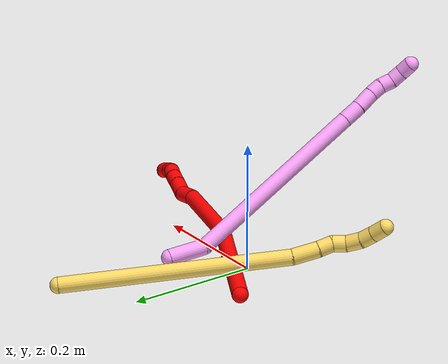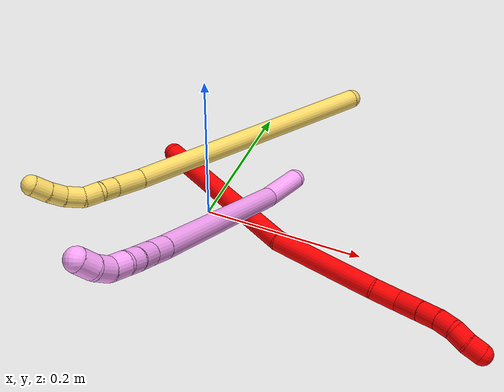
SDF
<sdf version="1.7">
 <world name="default">
  <model name="bin">
   <static>1</static>
   <link name="bottom">
    <collision name="collision-bottom">
     <pose>0 0 -0.01 0 -0 0</pose>
     <geometry><box><size>0.8 0.6 0.02</size></box></geometry>
     <surface>
      <friction><ode><mu>100</mu><mu2>100</mu2></ode></friction>
      <contact><collide_bitmask>65535</collide_bitmask></contact>
     </surface>
    </collision>
   </link>
   <link name="west_wall">
    <collision name="collision-west_wall">
     <pose>-0.41 0 0.1 0 -0 0</pose>
     <geometry><box><size>0.02 0.6 0.2</size></box></geometry>
     <surface>
      <friction><ode><mu>100</mu><mu2>100</mu2></ode></friction>
      <contact><collide_bitmask>65535</collide_bitmask></contact>
     </surface>
    </collision>
   </link>
   <link name="east_wall">
    <collision name="collision-east_wall">
     <pose>0.41 0 0.1 0 -0 0</pose>
     <geometry><box><size>0.02 0.6 0.2</size></box></geometry>
     <surface>
      <friction><ode><mu>100</mu><mu2>100</mu2></ode></friction>
      <contact><collide_bitmask>65535</collide_bitmask></contact>
     </surface>
    </collision>
   </link>
   <link name="south_wall">
    <collision name="collision-south_wall">
     <pose>0 -0.31 0.1 0 -0 0</pose>
     <geometry><box><size>0.8 0.02 0.2</size></box></geometry>
     <surface>
      <friction><ode><mu>100</mu><mu2>100</mu2></ode></friction>
      <contact><collide_bitmask>65535</collide_bitmask></contact>
     </surface>
    </collision>
   </link>
   <link name="north_wall">
    <collision name="collision-north_wall">
     <pose>0 0.31 0.1 0 -0 0</pose>
     <geometry><box><size>0.8 0.02 0.2</size></box></geometry>
     <surface>
      <friction><ode><mu>100</mu><mu2>100</mu2></ode></friction>
      <contact><collide_bitmask>65535</collide_bitmask></contact>
     </surface>
    </collision>
   </link>
  </model>
  <model name="2">
   <static>0</static>
   <link name="2">
    <collision name="collision-cylinder-e_1_1_4">
     <pose>0.096341 -0.050502 -0.005116 1.67175 1.08587 1.17736</pose>
     <geometry><cylinder><radius>0.0125</radius><length>0.217791</length></cylinder></geometry>
     <surface>
      <friction><ode><mu>1.16</mu><mu2>1.16</mu2><slip1>0</slip1><slip2>0</slip2></ode></friction>
      <contact><ode><kp>1e+06</kp><kd>1</kd><max_vel>0</max_vel><min_depth>0.001</min_depth></ode></contact>
     </surface>
    </collision>
    <visual name="visual-cylinder-e_1_1_4">
     <pose>0.096341 -0.050502 -0.005116 1.67175 1.08587 1.17736</pose>
     <geometry><cylinder><radius>0.0125</radius><length>0.217791</length></cylinder></geometry>
     <material><ambient>1 0 0 1</ambient></material>
    </visual>
    <collision name="collision-cylinder-e_2_4_5">
     <pose>0.257095 -0.119188 -0.003882 1.23485 1.28024 0.972813</pose>
     <geometry><cylinder><radius>0.0125</radius><length>0.134462</length></cylinder></geometry>
     <surface>
      <friction><ode><mu>1.16</mu><mu2>1.16</mu2><slip1>0</slip1><slip2>0</slip2></ode></friction>
      <contact><ode><kp>1e+06</kp><kd>1</kd><max_vel>0</max_vel><min_depth>0.001</min_depth></ode></contact>
     </surface>
    </collision>
    <visual name="visual-cylinder-e_2_4_5">
     <pose>0.257095 -0.119188 -0.003882 1.23485 1.28024 0.972813</pose>
     <geometry><cylinder><radius>0.0125</radius><length>0.134462</length></cylinder></geometry>
     <material><ambient>1 0 0 1</ambient></material>
    </visual>
    <collision name="collision-cylinder-e_3_5_6">
     <pose>0.337507 -0.137919 0.003184 0.651948 1.51451 0.618539</pose>
     <geometry><cylinder><radius>0.0125</radius><length>0.032048</length></cylinder></geometry>
     <surface>
      <friction><ode><mu>1.16</mu><mu2>1.16</mu2><slip1>0</slip1><slip2>0</slip2></ode></friction>
      <contact><ode><kp>1e+06</kp><kd>1</kd><max_vel>0</max_vel><min_depth>0.001</min_depth></ode></contact>
     </surface>
    </collision>
    <visual name="visual-cylinder-e_3_5_6">
     <pose>0.337507 -0.137919 0.003184 0.651948 1.51451 0.618539</pose>
     <geometry><cylinder><radius>0.0125</radius><length>0.032048</length></cylinder></geometry>
     <material><ambient>1 0 0 1</ambient></material>
    </visual>
    <collision name="collision-cylinder-e_4_6_7">
     <pose>0.367316 -0.144819 0.006475 1.18573 1.11007 0.791404</pose>
     <geometry><cylinder><radius>0.0125</radius><length>0.030836</length></cylinder></geometry>
     <surface>
      <friction><ode><mu>1.16</mu><mu2>1.16</mu2><slip1>0</slip1><slip2>0</slip2></ode></friction>
      <contact><ode><kp>1e+06</kp><kd>1</kd><max_vel>0</max_vel><min_depth>0.001</min_depth></ode></contact>
     </surface>
    </collision>
    <visual name="visual-cylinder-e_4_6_7">
     <pose>0.367316 -0.144819 0.006475 1.18573 1.11007 0.791404</pose>
     <geometry><cylinder><radius>0.0125</radius><length>0.030836</length></cylinder></geometry>
     <material><ambient>1 0 0 1</ambient></material>
    </visual>
    <collision name="collision-cylinder-e_5_7_8">
     <pose>0.39189 -0.155709 0.010844 1.1943 1.14522 0.826236</pose>
     <geometry><cylinder><radius>0.0125</radius><length>0.023635</length></cylinder></geometry>
     <surface>
      <friction><ode><mu>1.16</mu><mu2>1.16</mu2><slip1>0</slip1><slip2>0</slip2></ode></friction>
      <contact><ode><kp>1e+06</kp><kd>1</kd><max_vel>0</max_vel><min_depth>0.001</min_depth></ode></contact>
     </surface>
    </collision>
    <visual name="visual-cylinder-e_5_7_8">
     <pose>0.39189 -0.155709 0.010844 1.1943 1.14522 0.826236</pose>
     <geometry><cylinder><radius>0.0125</radius><length>0.023635</length></cylinder></geometry>
     <material><ambient>1 0 0 1</ambient></material>
    </visual>
    <collision name="collision-cylinder-e_6_8_9">
     <pose>0.412083 -0.164793 0.012913 1.51021 1.12075 1.0669</pose>
     <geometry><cylinder><radius>0.0125</radius><length>0.020944</length></cylinder></geometry>
     <surface>
      <friction><ode><mu>1.16</mu><mu2>1.16</mu2><slip1>0</slip1><slip2>0</slip2></ode></friction>
      <contact><ode><kp>1e+06</kp><kd>1</kd><max_vel>0</max_vel><min_depth>0.001</min_depth></ode></contact>
     </surface>
    </collision>
    <visual name="visual-cylinder-e_6_8_9">
     <pose>0.412083 -0.164793 0.012913 1.51021 1.12075 1.0669</pose>
     <geometry><cylinder><radius>0.0125</radius><length>0.020944</length></cylinder></geometry>
     <material><ambient>1 0 0 1</ambient></material>
    </visual>
    <collision name="collision-cylinder-e_7_9_10">
     <pose>0.431008 -0.171126 0.010468 2.56062 1.24058 2.34891</pose>
     <geometry><cylinder><radius>0.0125</radius><length>0.020075</length></cylinder></geometry>
     <surface>
      <friction><ode><mu>1.16</mu><mu2>1.16</mu2><slip1>0</slip1><slip2>0</slip2></ode></friction>
      <contact><ode><kp>1e+06</kp><kd>1</kd><max_vel>0</max_vel><min_depth>0.001</min_depth></ode></contact>
     </surface>
    </collision>
    <visual name="visual-cylinder-e_7_9_10">
     <pose>0.431008 -0.171126 0.010468 2.56062 1.24058 2.34891</pose>
     <geometry><cylinder><radius>0.0125</radius><length>0.020075</length></cylinder></geometry>
     <material><ambient>1 0 0 1</ambient></material>
    </visual>
    <collision name="collision-cylinder-e_8_10_2">
     <pose>0.450437 -0.172633 0.005922 -2.9898 1.38699 -2.95913</pose>
     <geometry><cylinder><radius>0.0125</radius><length>0.020208</length></cylinder></geometry>
     <surface>
      <friction><ode><mu>1.16</mu><mu2>1.16</mu2><slip1>0</slip1><slip2>0</slip2></ode></friction>
      <contact><ode><kp>1e+06</kp><kd>1</kd><max_vel>0</max_vel><min_depth>0.001</min_depth></ode></contact>
     </surface>
    </collision>
    <visual name="visual-cylinder-e_8_10_2">
     <pose>0.450437 -0.172633 0.005922 -2.9898 1.38699 -2.95913</pose>
     <geometry><cylinder><radius>0.0125</radius><length>0.020208</length></cylinder></geometry>
     <material><ambient>1 0 0 1</ambient></material>
    </visual>
    <collision name="collision-sphere-2">
     <pose>0.46037 -0.172354 0.004097 0 -0 0</pose>
     <geometry><sphere><radius>0.0125</radius></sphere></geometry>
     <surface>
      <friction><ode><mu>1.16</mu><mu2>1.16</mu2><slip1>0</slip1><slip2>0</slip2></ode></friction>
      <contact><ode><kp>1e+06</kp><kd>1</kd><max_vel>0</max_vel><min_depth>0.001</min_depth></ode></contact>
     </surface>
    </collision>
    <visual name="visual-sphere-2">
     <pose>0.46037 -0.172354 0.004097 0 -0 0</pose>
     <geometry><sphere><radius>0.0125</radius></sphere></geometry>
     <material><ambient>1 0 0 1</ambient></material>
    </visual>
    <collision name="collision-sphere-10">
     <pose>0.440503 -0.172913 0.007748 0 -0 0</pose>
     <geometry><sphere><radius>0.0125</radius></sphere></geometry>
     <surface>
      <friction><ode><mu>1.16</mu><mu2>1.16</mu2><slip1>0</slip1><slip2>0</slip2></ode></friction>
      <contact><ode><kp>1e+06</kp><kd>1</kd><max_vel>0</max_vel><min_depth>0.001</min_depth></ode></contact>
     </surface>
    </collision>
    <visual name="visual-sphere-10">
     <pose>0.440503 -0.172913 0.007748 0 -0 0</pose>
     <geometry><sphere><radius>0.0125</radius></sphere></geometry>
     <material><ambient>1 0 0 1</ambient></material>
    </visual>
    <collision name="collision-sphere-9">
     <pose>0.421512 -0.16934 0.013189 0 -0 0</pose>
     <geometry><sphere><radius>0.0125</radius></sphere></geometry>
     <surface>
      <friction><ode><mu>1.16</mu><mu2>1.16</mu2><slip1>0</slip1><slip2>0</slip2></ode></friction>
      <contact><ode><kp>1e+06</kp><kd>1</kd><max_vel>0</max_vel><min_depth>0.001</min_depth></ode></contact>
     </surface>
    </collision>
    <visual name="visual-sphere-9">
     <pose>0.421512 -0.16934 0.013189 0 -0 0</pose>
     <geometry><sphere><radius>0.0125</radius></sphere></geometry>
     <material><ambient>1 0 0 1</ambient></material>
    </visual>
    <collision name="collision-sphere-4">
     <pose>0.192682 -0.101004 -0.010232 0 -0 0</pose>
     <geometry><sphere><radius>0.0125</radius></sphere></geometry>
     <surface>
      <friction><ode><mu>1.16</mu><mu2>1.16</mu2><slip1>0</slip1><slip2>0</slip2></ode></friction>
      <contact><ode><kp>1e+06</kp><kd>1</kd><max_vel>0</max_vel><min_depth>0.001</min_depth></ode></contact>
     </surface>
    </collision>
    <visual name="visual-sphere-4">
     <pose>0.192682 -0.101004 -0.010232 0 -0 0</pose>
     <geometry><sphere><radius>0.0125</radius></sphere></geometry>
     <material><ambient>1 0 0 1</ambient></material>
    </visual>
    <collision name="collision-sphere-1">
     <geometry><sphere><radius>0.0125</radius></sphere></geometry>
     <surface>
      <friction><ode><mu>1.16</mu><mu2>1.16</mu2><slip1>0</slip1><slip2>0</slip2></ode></friction>
      <contact><ode><kp>1e+06</kp><kd>1</kd><max_vel>0</max_vel><min_depth>0.001</min_depth></ode></contact>
     </surface>
    </collision>
    <visual name="visual-sphere-1">
     <geometry><sphere><radius>0.0125</radius></sphere></geometry>
     <material><ambient>1 0 0 1</ambient></material>
    </visual>
    <collision name="collision-sphere-8">
     <pose>0.402653 -0.160246 0.012637 0 -0 0</pose>
     <geometry><sphere><radius>0.0125</radius></sphere></geometry>
     <surface>
      <friction><ode><mu>1.16</mu><mu2>1.16</mu2><slip1>0</slip1><slip2>0</slip2></ode></friction>
      <contact><ode><kp>1e+06</kp><kd>1</kd><max_vel>0</max_vel><min_depth>0.001</min_depth></ode></contact>
     </surface>
    </collision>
    <visual name="visual-sphere-8">
     <pose>0.402653 -0.160246 0.012637 0 -0 0</pose>
     <geometry><sphere><radius>0.0125</radius></sphere></geometry>
     <material><ambient>1 0 0 1</ambient></material>
    </visual>
    <collision name="collision-sphere-5">
     <pose>0.321509 -0.137372 0.002467 0 -0 0</pose>
     <geometry><sphere><radius>0.0125</radius></sphere></geometry>
     <surface>
      <friction><ode><mu>1.16</mu><mu2>1.16</mu2><slip1>0</slip1><slip2>0</slip2></ode></friction>
      <contact><ode><kp>1e+06</kp><kd>1</kd><max_vel>0</max_vel><min_depth>0.001</min_depth></ode></contact>
     </surface>
    </collision>
    <visual name="visual-sphere-5">
     <pose>0.321509 -0.137372 0.002467 0 -0 0</pose>
     <geometry><sphere><radius>0.0125</radius></sphere></geometry>
     <material><ambient>1 0 0 1</ambient></material>
    </visual>
    <collision name="collision-sphere-6">
     <pose>0.353506 -0.138466 0.0039 0 -0 0</pose>
     <geometry><sphere><radius>0.0125</radius></sphere></geometry>
     <surface>
      <friction><ode><mu>1.16</mu><mu2>1.16</mu2><slip1>0</slip1><slip2>0</slip2></ode></friction>
      <contact><ode><kp>1e+06</kp><kd>1</kd><max_vel>0</max_vel><min_depth>0.001</min_depth></ode></contact>
     </surface>
    </collision>
    <visual name="visual-sphere-6">
     <pose>0.353506 -0.138466 0.0039 0 -0 0</pose>
     <geometry><sphere><radius>0.0125</radius></sphere></geometry>
     <material><ambient>1 0 0 1</ambient></material>
    </visual>
    <collision name="collision-sphere-7">
     <pose>0.381127 -0.151172 0.00905 0 -0 0</pose>
     <geometry><sphere><radius>0.0125</radius></sphere></geometry>
     <surface>
      <friction><ode><mu>1.16</mu><mu2>1.16</mu2><slip1>0</slip1><slip2>0</slip2></ode></friction>
      <contact><ode><kp>1e+06</kp><kd>1</kd><max_vel>0</max_vel><min_depth>0.001</min_depth></ode></contact>
     </surface>
    </collision>
    <visual name="visual-sphere-7">
     <pose>0.381127 -0.151172 0.00905 0 -0 0</pose>
     <geometry><sphere><radius>0.0125</radius></sphere></geometry>
     <material><ambient>1 0 0 1</ambient></material>
    </visual>
    <inertial>
     <pose>0.226686 -0.099933 -0.000956 0 -0 0</pose>
     <mass>0.5</mass>
     <inertia>
      <ixx>0.000653</ixx>
      <ixy>0</ixy>
      <ixz>0</ixz>
      <iyy>0.001293</iyy>
      <iyz>0</iyz>
      <izz>-0.000519</izz>
     </inertia>
    </inertial>
   </link>
   <pose>-0.085675 0.074913 0.011493 -0.549428 0.200368 -0.063054</pose>
  </model>
  <model name="4">
   <static>0</static>
   <link name="4">
    <collision name="collision-cylinder-e_1_1_4">
     <pose>-0.000974 -0.027912 0.007723 1.30087 -0.033622 -0.025583</pose>
     <geometry><cylinder><radius>0.0125</radius><length>0.057954</length></cylinder></geometry>
     <surface>
      <friction><ode><mu>1.16</mu><mu2>1.16</mu2><slip1>0</slip1><slip2>0</slip2></ode></friction>
      <contact><ode><kp>1e+06</kp><kd>1</kd><max_vel>0</max_vel><min_depth>0.001</min_depth></ode></contact>
     </surface>
    </collision>
    <visual name="visual-cylinder-e_1_1_4">
     <pose>-0.000974 -0.027912 0.007723 1.30087 -0.033622 -0.025583</pose>
     <geometry><cylinder><radius>0.0125</radius><length>0.057954</length></cylinder></geometry>
     <material><ambient>1 0.65098 0.996078 1</ambient></material>
    </visual>
    <collision name="collision-cylinder-e_2_4_5">
     <pose>0.037535 -0.201176 0.009897 1.60895 0.265056 0.27524</pose>
     <geometry><cylinder><radius>0.0125</radius><length>0.301443</length></cylinder></geometry>
     <surface>
      <friction><ode><mu>1.16</mu><mu2>1.16</mu2><slip1>0</slip1><slip2>0</slip2></ode></friction>
      <contact><ode><kp>1e+06</kp><kd>1</kd><max_vel>0</max_vel><min_depth>0.001</min_depth></ode></contact>
     </surface>
    </collision>
    <visual name="visual-cylinder-e_2_4_5">
     <pose>0.037535 -0.201176 0.009897 1.60895 0.265056 0.27524</pose>
     <geometry><cylinder><radius>0.0125</radius><length>0.301443</length></cylinder></geometry>
     <material><ambient>1 0.65098 0.996078 1</ambient></material>
    </visual>
    <collision name="collision-cylinder-e_3_5_6">
     <pose>0.081348 -0.3612 0.004185 1.58196 0.286924 0.290101</pose>
     <geometry><cylinder><radius>0.0125</radius><length>0.030595</length></cylinder></geometry>
     <surface>
      <friction><ode><mu>1.16</mu><mu2>1.16</mu2><slip1>0</slip1><slip2>0</slip2></ode></friction>
      <contact><ode><kp>1e+06</kp><kd>1</kd><max_vel>0</max_vel><min_depth>0.001</min_depth></ode></contact>
     </surface>
    </collision>
    <visual name="visual-cylinder-e_3_5_6">
     <pose>0.081348 -0.3612 0.004185 1.58196 0.286924 0.290101</pose>
     <geometry><cylinder><radius>0.0125</radius><length>0.030595</length></cylinder></geometry>
     <material><ambient>1 0.65098 0.996078 1</ambient></material>
    </visual>
    <collision name="collision-cylinder-e_4_6_7">
     <pose>0.090301 -0.389982 0.002537 1.67559 0.314975 0.349169</pose>
     <geometry><cylinder><radius>0.0125</radius><length>0.029847</length></cylinder></geometry>
     <surface>
      <friction><ode><mu>1.16</mu><mu2>1.16</mu2><slip1>0</slip1><slip2>0</slip2></ode></friction>
      <contact><ode><kp>1e+06</kp><kd>1</kd><max_vel>0</max_vel><min_depth>0.001</min_depth></ode></contact>
     </surface>
    </collision>
    <visual name="visual-cylinder-e_4_6_7">
     <pose>0.090301 -0.389982 0.002537 1.67559 0.314975 0.349169</pose>
     <geometry><cylinder><radius>0.0125</radius><length>0.029847</length></cylinder></geometry>
     <material><ambient>1 0.65098 0.996078 1</ambient></material>
    </visual>
    <collision name="collision-cylinder-e_5_7_8">
     <pose>0.09785 -0.413668 0.001316 1.54331 0.296513 0.288587</pose>
     <geometry><cylinder><radius>0.0125</radius><length>0.020029</length></cylinder></geometry>
     <surface>
      <friction><ode><mu>1.16</mu><mu2>1.16</mu2><slip1>0</slip1><slip2>0</slip2></ode></friction>
      <contact><ode><kp>1e+06</kp><kd>1</kd><max_vel>0</max_vel><min_depth>0.001</min_depth></ode></contact>
     </surface>
    </collision>
    <visual name="visual-cylinder-e_5_7_8">
     <pose>0.09785 -0.413668 0.001316 1.54331 0.296513 0.288587</pose>
     <geometry><cylinder><radius>0.0125</radius><length>0.020029</length></cylinder></geometry>
     <material><ambient>1 0.65098 0.996078 1</ambient></material>
    </visual>
    <collision name="collision-cylinder-e_6_8_9">
     <pose>0.102484 -0.432784 0.004196 1.30309 0.170904 0.130472</pose>
     <geometry><cylinder><radius>0.0125</radius><length>0.020083</length></cylinder></geometry>
     <surface>
      <friction><ode><mu>1.16</mu><mu2>1.16</mu2><slip1>0</slip1><slip2>0</slip2></ode></friction>
      <contact><ode><kp>1e+06</kp><kd>1</kd><max_vel>0</max_vel><min_depth>0.001</min_depth></ode></contact>
     </surface>
    </collision>
    <visual name="visual-cylinder-e_6_8_9">
     <pose>0.102484 -0.432784 0.004196 1.30309 0.170904 0.130472</pose>
     <geometry><cylinder><radius>0.0125</radius><length>0.020083</length></cylinder></geometry>
     <material><ambient>1 0.65098 0.996078 1</ambient></material>
    </visual>
    <collision name="collision-cylinder-e_7_9_10">
     <pose>0.109281 -0.450655 0.009019 1.31197 0.533621 0.41471</pose>
     <geometry><cylinder><radius>0.0125</radius><length>0.020011</length></cylinder></geometry>
     <surface>
      <friction><ode><mu>1.16</mu><mu2>1.16</mu2><slip1>0</slip1><slip2>0</slip2></ode></friction>
      <contact><ode><kp>1e+06</kp><kd>1</kd><max_vel>0</max_vel><min_depth>0.001</min_depth></ode></contact>
     </surface>
    </collision>
    <visual name="visual-cylinder-e_7_9_10">
     <pose>0.109281 -0.450655 0.009019 1.31197 0.533621 0.41471</pose>
     <geometry><cylinder><radius>0.0125</radius><length>0.020011</length></cylinder></geometry>
     <material><ambient>1 0.65098 0.996078 1</ambient></material>
    </visual>
    <collision name="collision-cylinder-e_8_10_2">
     <pose>0.121194 -0.465209 0.015101 1.01381 0.749276 0.429949</pose>
     <geometry><cylinder><radius>0.0125</radius><length>0.020037</length></cylinder></geometry>
     <surface>
      <friction><ode><mu>1.16</mu><mu2>1.16</mu2><slip1>0</slip1><slip2>0</slip2></ode></friction>
      <contact><ode><kp>1e+06</kp><kd>1</kd><max_vel>0</max_vel><min_depth>0.001</min_depth></ode></contact>
     </surface>
    </collision>
    <visual name="visual-cylinder-e_8_10_2">
     <pose>0.121194 -0.465209 0.015101 1.01381 0.749276 0.429949</pose>
     <geometry><cylinder><radius>0.0125</radius><length>0.020037</length></cylinder></geometry>
     <material><ambient>1 0.65098 0.996078 1</ambient></material>
    </visual>
    <collision name="collision-sphere-2">
     <pose>0.128018 -0.471436 0.018979 0 -0 0</pose>
     <geometry><sphere><radius>0.0125</radius></sphere></geometry>
     <surface>
      <friction><ode><mu>1.16</mu><mu2>1.16</mu2><slip1>0</slip1><slip2>0</slip2></ode></friction>
      <contact><ode><kp>1e+06</kp><kd>1</kd><max_vel>0</max_vel><min_depth>0.001</min_depth></ode></contact>
     </surface>
    </collision>
    <visual name="visual-sphere-2">
     <pose>0.128018 -0.471436 0.018979 0 -0 0</pose>
     <geometry><sphere><radius>0.0125</radius></sphere></geometry>
     <material><ambient>1 0.65098 0.996078 1</ambient></material>
    </visual>
    <collision name="collision-sphere-10">
     <pose>0.114371 -0.458983 0.011223 0 -0 0</pose>
     <geometry><sphere><radius>0.0125</radius></sphere></geometry>
     <surface>
      <friction><ode><mu>1.16</mu><mu2>1.16</mu2><slip1>0</slip1><slip2>0</slip2></ode></friction>
      <contact><ode><kp>1e+06</kp><kd>1</kd><max_vel>0</max_vel><min_depth>0.001</min_depth></ode></contact>
     </surface>
    </collision>
    <visual name="visual-sphere-10">
     <pose>0.114371 -0.458983 0.011223 0 -0 0</pose>
     <geometry><sphere><radius>0.0125</radius></sphere></geometry>
     <material><ambient>1 0.65098 0.996078 1</ambient></material>
    </visual>
    <collision name="collision-sphere-9">
     <pose>0.104192 -0.442327 0.006814 0 -0 0</pose>
     <geometry><sphere><radius>0.0125</radius></sphere></geometry>
     <surface>
      <friction><ode><mu>1.16</mu><mu2>1.16</mu2><slip1>0</slip1><slip2>0</slip2></ode></friction>
      <contact><ode><kp>1e+06</kp><kd>1</kd><max_vel>0</max_vel><min_depth>0.001</min_depth></ode></contact>
     </surface>
    </collision>
    <visual name="visual-sphere-9">
     <pose>0.104192 -0.442327 0.006814 0 -0 0</pose>
     <geometry><sphere><radius>0.0125</radius></sphere></geometry>
     <material><ambient>1 0.65098 0.996078 1</ambient></material>
    </visual>
    <collision name="collision-sphere-4">
     <pose>-0.001948 -0.055824 0.015445 0 -0 0</pose>
     <geometry><sphere><radius>0.0125</radius></sphere></geometry>
     <surface>
      <friction><ode><mu>1.16</mu><mu2>1.16</mu2><slip1>0</slip1><slip2>0</slip2></ode></friction>
      <contact><ode><kp>1e+06</kp><kd>1</kd><max_vel>0</max_vel><min_depth>0.001</min_depth></ode></contact>
     </surface>
    </collision>
    <visual name="visual-sphere-4">
     <pose>-0.001948 -0.055824 0.015445 0 -0 0</pose>
     <geometry><sphere><radius>0.0125</radius></sphere></geometry>
     <material><ambient>1 0.65098 0.996078 1</ambient></material>
    </visual>
    <collision name="collision-sphere-1">
     <geometry><sphere><radius>0.0125</radius></sphere></geometry>
     <surface>
      <friction><ode><mu>1.16</mu><mu2>1.16</mu2><slip1>0</slip1><slip2>0</slip2></ode></friction>
      <contact><ode><kp>1e+06</kp><kd>1</kd><max_vel>0</max_vel><min_depth>0.001</min_depth></ode></contact>
     </surface>
    </collision>
    <visual name="visual-sphere-1">
     <geometry><sphere><radius>0.0125</radius></sphere></geometry>
     <material><ambient>1 0.65098 0.996078 1</ambient></material>
    </visual>
    <collision name="collision-sphere-8">
     <pose>0.100776 -0.423242 0.001579 0 -0 0</pose>
     <geometry><sphere><radius>0.0125</radius></sphere></geometry>
     <surface>
      <friction><ode><mu>1.16</mu><mu2>1.16</mu2><slip1>0</slip1><slip2>0</slip2></ode></friction>
      <contact><ode><kp>1e+06</kp><kd>1</kd><max_vel>0</max_vel><min_depth>0.001</min_depth></ode></contact>
     </surface>
    </collision>
    <visual name="visual-sphere-8">
     <pose>0.100776 -0.423242 0.001579 0 -0 0</pose>
     <geometry><sphere><radius>0.0125</radius></sphere></geometry>
     <material><ambient>1 0.65098 0.996078 1</ambient></material>
    </visual>
    <collision name="collision-sphere-5">
     <pose>0.077019 -0.346528 0.004348 0 -0 0</pose>
     <geometry><sphere><radius>0.0125</radius></sphere></geometry>
     <surface>
      <friction><ode><mu>1.16</mu><mu2>1.16</mu2><slip1>0</slip1><slip2>0</slip2></ode></friction>
      <contact><ode><kp>1e+06</kp><kd>1</kd><max_vel>0</max_vel><min_depth>0.001</min_depth></ode></contact>
     </surface>
    </collision>
    <visual name="visual-sphere-5">
     <pose>0.077019 -0.346528 0.004348 0 -0 0</pose>
     <geometry><sphere><radius>0.0125</radius></sphere></geometry>
     <material><ambient>1 0.65098 0.996078 1</ambient></material>
    </visual>
    <collision name="collision-sphere-6">
     <pose>0.085678 -0.375871 0.004021 0 -0 0</pose>
     <geometry><sphere><radius>0.0125</radius></sphere></geometry>
     <surface>
      <friction><ode><mu>1.16</mu><mu2>1.16</mu2><slip1>0</slip1><slip2>0</slip2></ode></friction>
      <contact><ode><kp>1e+06</kp><kd>1</kd><max_vel>0</max_vel><min_depth>0.001</min_depth></ode></contact>
     </surface>
    </collision>
    <visual name="visual-sphere-6">
     <pose>0.085678 -0.375871 0.004021 0 -0 0</pose>
     <geometry><sphere><radius>0.0125</radius></sphere></geometry>
     <material><ambient>1 0.65098 0.996078 1</ambient></material>
    </visual>
    <collision name="collision-sphere-7">
     <pose>0.094924 -0.404094 0.001052 0 -0 0</pose>
     <geometry><sphere><radius>0.0125</radius></sphere></geometry>
     <surface>
      <friction><ode><mu>1.16</mu><mu2>1.16</mu2><slip1>0</slip1><slip2>0</slip2></ode></friction>
      <contact><ode><kp>1e+06</kp><kd>1</kd><max_vel>0</max_vel><min_depth>0.001</min_depth></ode></contact>
     </surface>
    </collision>
    <visual name="visual-sphere-7">
     <pose>0.094924 -0.404094 0.001052 0 -0 0</pose>
     <geometry><sphere><radius>0.0125</radius></sphere></geometry>
     <material><ambient>1 0.65098 0.996078 1</ambient></material>
    </visual>
    <inertial>
     <pose>0.050151 -0.240537 0.008457 0 -0 0</pose>
     <mass>0.5</mass>
     <inertia>
      <ixx>0.002776</ixx>
      <ixy>0</ixy>
      <ixz>0</ixz>
      <iyy>0.000655</iyy>
      <iyz>0</iyz>
      <izz>0.001639</izz>
     </inertia>
    </inertial>
   </link>
   <pose>0.080755 0.087842 0.012498 -2.26265 -1.24405 2.29295</pose>
  </model>
  <model name="5">
   <static>0</static>
   <link name="5">
    <collision name="collision-cylinder-e_1_1_4">
     <pose>-0.132707 -0.103265 -0.045424 1.9852 -0.866246 -1.23291</pose>
     <geometry><cylinder><radius>0.0125</radius><length>0.348357</length></cylinder></geometry>
     <surface>
      <friction><ode><mu>1.16</mu><mu2>1.16</mu2><slip1>0</slip1><slip2>0</slip2></ode></friction>
      <contact><ode><kp>1e+06</kp><kd>1</kd><max_vel>0</max_vel><min_depth>0.001</min_depth></ode></contact>
     </surface>
    </collision>
    <visual name="visual-cylinder-e_1_1_4">
     <pose>-0.132707 -0.103265 -0.045424 1.9852 -0.866246 -1.23291</pose>
     <geometry><cylinder><radius>0.0125</radius><length>0.348357</length></cylinder></geometry>
     <material><ambient>1 0.858824 0.4 1</ambient></material>
    </visual>
    <collision name="collision-cylinder-e_2_4_5">
     <pose>-0.278627 -0.220212 -0.098134 2.06007 -0.705872 -1.10051</pose>
     <geometry><cylinder><radius>0.0125</radius><length>0.040738</length></cylinder></geometry>
     <surface>
      <friction><ode><mu>1.16</mu><mu2>1.16</mu2><slip1>0</slip1><slip2>0</slip2></ode></friction>
      <contact><ode><kp>1e+06</kp><kd>1</kd><max_vel>0</max_vel><min_depth>0.001</min_depth></ode></contact>
     </surface>
    </collision>
    <visual name="visual-cylinder-e_2_4_5">
     <pose>-0.278627 -0.220212 -0.098134 2.06007 -0.705872 -1.10051</pose>
     <geometry><cylinder><radius>0.0125</radius><length>0.040738</length></cylinder></geometry>
     <material><ambient>1 0.858824 0.4 1</ambient></material>
    </visual>
    <collision name="collision-cylinder-e_3_5_6">
     <pose>-0.298159 -0.241635 -0.110189 2.12302 -0.607395 -1.02282</pose>
     <geometry><cylinder><radius>0.0125</radius><length>0.022143</length></cylinder></geometry>
     <surface>
      <friction><ode><mu>1.16</mu><mu2>1.16</mu2><slip1>0</slip1><slip2>0</slip2></ode></friction>
      <contact><ode><kp>1e+06</kp><kd>1</kd><max_vel>0</max_vel><min_depth>0.001</min_depth></ode></contact>
     </surface>
    </collision>
    <visual name="visual-cylinder-e_3_5_6">
     <pose>-0.298159 -0.241635 -0.110189 2.12302 -0.607395 -1.02282</pose>
     <geometry><cylinder><radius>0.0125</radius><length>0.022143</length></cylinder></geometry>
     <material><ambient>1 0.858824 0.4 1</ambient></material>
    </visual>
    <collision name="collision-cylinder-e_4_6_7">
     <pose>-0.31334 -0.255391 -0.116339 1.79641 -0.962384 -1.16053</pose>
     <geometry><cylinder><radius>0.0125</radius><length>0.021598</length></cylinder></geometry>
     <surface>
      <friction><ode><mu>1.16</mu><mu2>1.16</mu2><slip1>0</slip1><slip2>0</slip2></ode></friction>
      <contact><ode><kp>1e+06</kp><kd>1</kd><max_vel>0</max_vel><min_depth>0.001</min_depth></ode></contact>
     </surface>
    </collision>
    <visual name="visual-cylinder-e_4_6_7">
     <pose>-0.31334 -0.255391 -0.116339 1.79641 -0.962384 -1.16053</pose>
     <geometry><cylinder><radius>0.0125</radius><length>0.021598</length></cylinder></geometry>
     <material><ambient>1 0.858824 0.4 1</ambient></material>
    </visual>
    <collision name="collision-cylinder-e_5_7_8">
     <pose>-0.329196 -0.271165 -0.117492 1.54753 -0.621769 -0.608341</pose>
     <geometry><cylinder><radius>0.0125</radius><length>0.024017</length></cylinder></geometry>
     <surface>
      <friction><ode><mu>1.16</mu><mu2>1.16</mu2><slip1>0</slip1><slip2>0</slip2></ode></friction>
      <contact><ode><kp>1e+06</kp><kd>1</kd><max_vel>0</max_vel><min_depth>0.001</min_depth></ode></contact>
     </surface>
    </collision>
    <visual name="visual-cylinder-e_5_7_8">
     <pose>-0.329196 -0.271165 -0.117492 1.54753 -0.621769 -0.608341</pose>
     <geometry><cylinder><radius>0.0125</radius><length>0.024017</length></cylinder></geometry>
     <material><ambient>1 0.858824 0.4 1</ambient></material>
    </visual>
    <collision name="collision-cylinder-e_6_8_9">
     <pose>-0.340063 -0.290606 -0.117267 1.571 -0.380515 -0.380593</pose>
     <geometry><cylinder><radius>0.0125</radius><length>0.020857</length></cylinder></geometry>
     <surface>
      <friction><ode><mu>1.16</mu><mu2>1.16</mu2><slip1>0</slip1><slip2>0</slip2></ode></friction>
      <contact><ode><kp>1e+06</kp><kd>1</kd><max_vel>0</max_vel><min_depth>0.001</min_depth></ode></contact>
     </surface>
    </collision>
    <visual name="visual-cylinder-e_6_8_9">
     <pose>-0.340063 -0.290606 -0.117267 1.571 -0.380515 -0.380593</pose>
     <geometry><cylinder><radius>0.0125</radius><length>0.020857</length></cylinder></geometry>
     <material><ambient>1 0.858824 0.4 1</ambient></material>
    </visual>
    <collision name="collision-cylinder-e_7_9_2">
     <pose>-0.347195 -0.310902 -0.116298 1.47953 -0.296753 -0.271164</pose>
     <geometry><cylinder><radius>0.0125</radius><length>0.02229</length></cylinder></geometry>
     <surface>
      <friction><ode><mu>1.16</mu><mu2>1.16</mu2><slip1>0</slip1><slip2>0</slip2></ode></friction>
      <contact><ode><kp>1e+06</kp><kd>1</kd><max_vel>0</max_vel><min_depth>0.001</min_depth></ode></contact>
     </surface>
    </collision>
    <visual name="visual-cylinder-e_7_9_2">
     <pose>-0.347195 -0.310902 -0.116298 1.47953 -0.296753 -0.271164</pose>
     <geometry><cylinder><radius>0.0125</radius><length>0.02229</length></cylinder></geometry>
     <material><ambient>1 0.858824 0.4 1</ambient></material>
    </visual>
    <collision name="collision-sphere-2">
     <pose>-0.350454 -0.321516 -0.115326 0 -0 0</pose>
     <geometry><sphere><radius>0.0125</radius></sphere></geometry>
     <surface>
      <friction><ode><mu>1.16</mu><mu2>1.16</mu2><slip1>0</slip1><slip2>0</slip2></ode></friction>
      <contact><ode><kp>1e+06</kp><kd>1</kd><max_vel>0</max_vel><min_depth>0.001</min_depth></ode></contact>
     </surface>
    </collision>
    <visual name="visual-sphere-2">
     <pose>-0.350454 -0.321516 -0.115326 0 -0 0</pose>
     <geometry><sphere><radius>0.0125</radius></sphere></geometry>
     <material><ambient>1 0.858824 0.4 1</ambient></material>
    </visual>
    <collision name="collision-sphere-9">
     <pose>-0.343936 -0.300289 -0.117269 0 -0 0</pose>
     <geometry><sphere><radius>0.0125</radius></sphere></geometry>
     <surface>
      <friction><ode><mu>1.16</mu><mu2>1.16</mu2><slip1>0</slip1><slip2>0</slip2></ode></friction>
      <contact><ode><kp>1e+06</kp><kd>1</kd><max_vel>0</max_vel><min_depth>0.001</min_depth></ode></contact>
     </surface>
    </collision>
    <visual name="visual-sphere-9">
     <pose>-0.343936 -0.300289 -0.117269 0 -0 0</pose>
     <geometry><sphere><radius>0.0125</radius></sphere></geometry>
     <material><ambient>1 0.858824 0.4 1</ambient></material>
    </visual>
    <collision name="collision-sphere-4">
     <pose>-0.265414 -0.206529 -0.090848 0 -0 0</pose>
     <geometry><sphere><radius>0.0125</radius></sphere></geometry>
     <surface>
      <friction><ode><mu>1.16</mu><mu2>1.16</mu2><slip1>0</slip1><slip2>0</slip2></ode></friction>
      <contact><ode><kp>1e+06</kp><kd>1</kd><max_vel>0</max_vel><min_depth>0.001</min_depth></ode></contact>
     </surface>
    </collision>
    <visual name="visual-sphere-4">
     <pose>-0.265414 -0.206529 -0.090848 0 -0 0</pose>
     <geometry><sphere><radius>0.0125</radius></sphere></geometry>
     <material><ambient>1 0.858824 0.4 1</ambient></material>
    </visual>
    <collision name="collision-sphere-1">
     <geometry><sphere><radius>0.0125</radius></sphere></geometry>
     <surface>
      <friction><ode><mu>1.16</mu><mu2>1.16</mu2><slip1>0</slip1><slip2>0</slip2></ode></friction>
      <contact><ode><kp>1e+06</kp><kd>1</kd><max_vel>0</max_vel><min_depth>0.001</min_depth></ode></contact>
     </surface>
    </collision>
    <visual name="visual-sphere-1">
     <geometry><sphere><radius>0.0125</radius></sphere></geometry>
     <material><ambient>1 0.858824 0.4 1</ambient></material>
    </visual>
    <collision name="collision-sphere-8">
     <pose>-0.33619 -0.280924 -0.117265 0 -0 0</pose>
     <geometry><sphere><radius>0.0125</radius></sphere></geometry>
     <surface>
      <friction><ode><mu>1.16</mu><mu2>1.16</mu2><slip1>0</slip1><slip2>0</slip2></ode></friction>
      <contact><ode><kp>1e+06</kp><kd>1</kd><max_vel>0</max_vel><min_depth>0.001</min_depth></ode></contact>
     </surface>
    </collision>
    <visual name="visual-sphere-8">
     <pose>-0.33619 -0.280924 -0.117265 0 -0 0</pose>
     <geometry><sphere><radius>0.0125</radius></sphere></geometry>
     <material><ambient>1 0.858824 0.4 1</ambient></material>
    </visual>
    <collision name="collision-sphere-5">
     <pose>-0.291841 -0.233895 -0.10542 0 -0 0</pose>
     <geometry><sphere><radius>0.0125</radius></sphere></geometry>
     <surface>
      <friction><ode><mu>1.16</mu><mu2>1.16</mu2><slip1>0</slip1><slip2>0</slip2></ode></friction>
      <contact><ode><kp>1e+06</kp><kd>1</kd><max_vel>0</max_vel><min_depth>0.001</min_depth></ode></contact>
     </surface>
    </collision>
    <visual name="visual-sphere-5">
     <pose>-0.291841 -0.233895 -0.10542 0 -0 0</pose>
     <geometry><sphere><radius>0.0125</radius></sphere></geometry>
     <material><ambient>1 0.858824 0.4 1</ambient></material>
    </visual>
    <collision name="collision-sphere-6">
     <pose>-0.304478 -0.249375 -0.114958 0 -0 0</pose>
     <geometry><sphere><radius>0.0125</radius></sphere></geometry>
     <surface>
      <friction><ode><mu>1.16</mu><mu2>1.16</mu2><slip1>0</slip1><slip2>0</slip2></ode></friction>
      <contact><ode><kp>1e+06</kp><kd>1</kd><max_vel>0</max_vel><min_depth>0.001</min_depth></ode></contact>
     </surface>
    </collision>
    <visual name="visual-sphere-6">
     <pose>-0.304478 -0.249375 -0.114958 0 -0 0</pose>
     <geometry><sphere><radius>0.0125</radius></sphere></geometry>
     <material><ambient>1 0.858824 0.4 1</ambient></material>
    </visual>
    <collision name="collision-sphere-7">
     <pose>-0.322201 -0.261407 -0.117719 0 -0 0</pose>
     <geometry><sphere><radius>0.0125</radius></sphere></geometry>
     <surface>
      <friction><ode><mu>1.16</mu><mu2>1.16</mu2><slip1>0</slip1><slip2>0</slip2></ode></friction>
      <contact><ode><kp>1e+06</kp><kd>1</kd><max_vel>0</max_vel><min_depth>0.001</min_depth></ode></contact>
     </surface>
    </collision>
    <visual name="visual-sphere-7">
     <pose>-0.322201 -0.261407 -0.117719 0 -0 0</pose>
     <geometry><sphere><radius>0.0125</radius></sphere></geometry>
     <material><ambient>1 0.858824 0.4 1</ambient></material>
    </visual>
    <inertial>
     <pose>-0.187376 -0.150628 -0.065268 0 -0 0</pose>
     <mass>0.5</mass>
     <inertia>
      <ixx>-0.00143</ixx>
      <ixy>0</ixy>
      <ixz>0</ixz>
      <iyy>-0.000336</iyy>
      <iyz>0</iyz>
      <izz>0.004803</izz>
     </inertia>
    </inertial>
   </link>
   <pose>0.091877 0.277808 0.014126 -1.70463 -0.595254 0.863297</pose>
  </model>
 </world>
</sdf>
